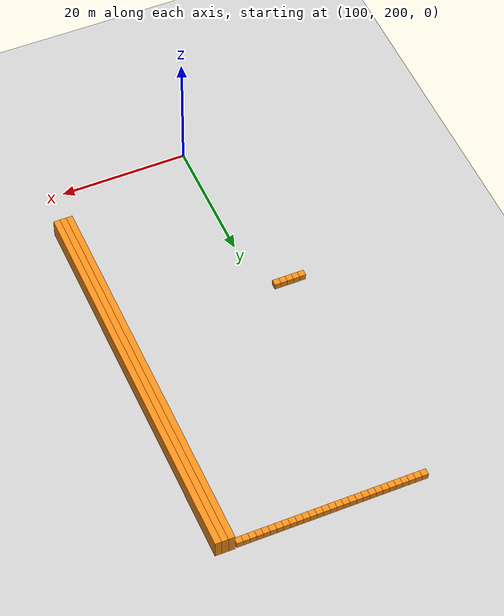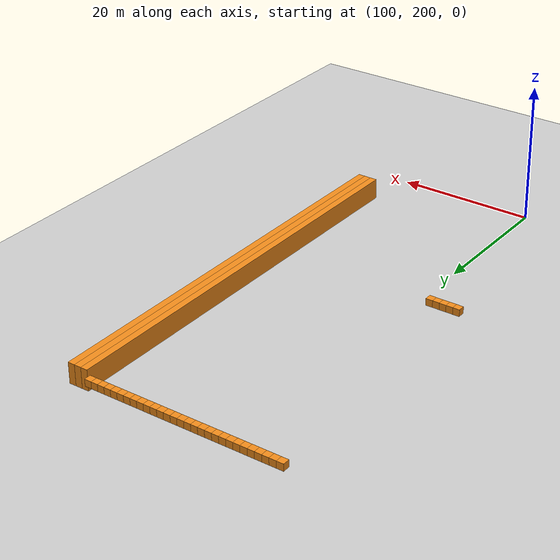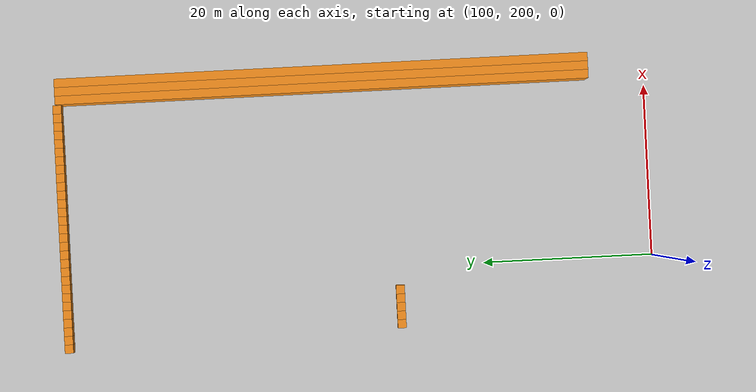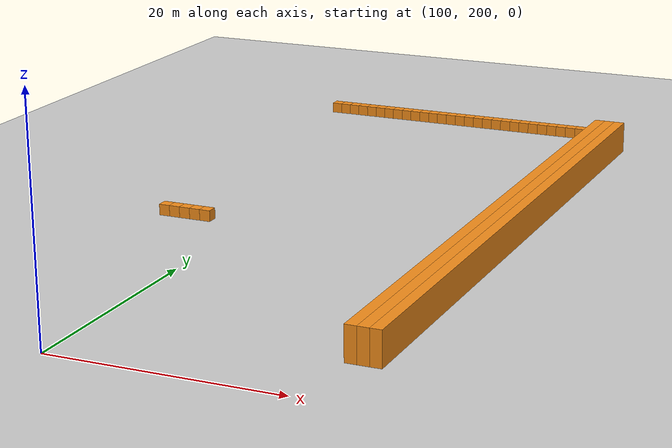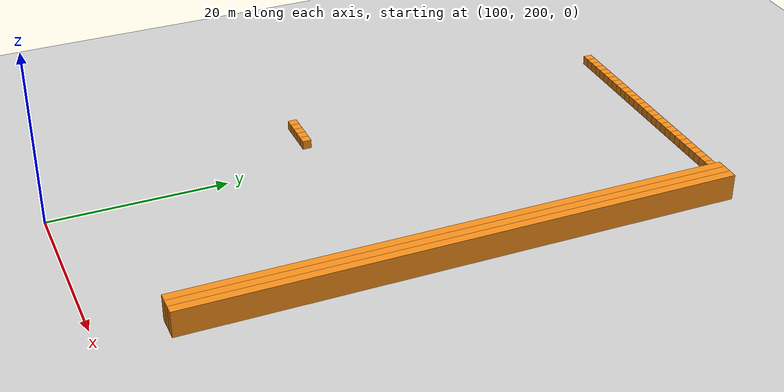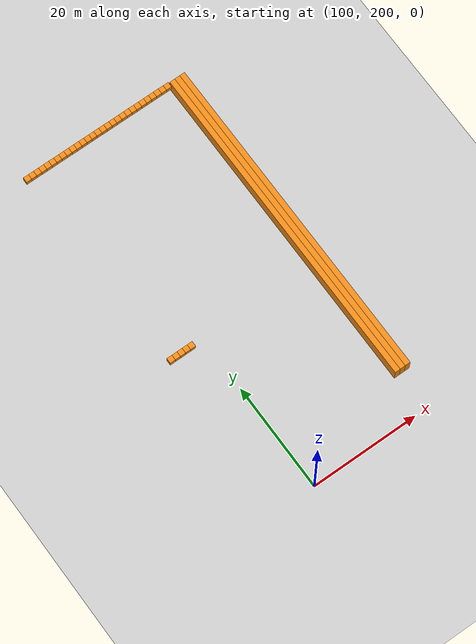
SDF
<sdf version="1.6">
 <world name="default">
  <include><uri>model://ground_plane</uri></include>
  <model name="unit_box_949">
   <pose>92.50   269.00     1.50 0 0 0</pose>
   <static>1</static>
   <link name="link">
    <inertial>
     <mass>5000</mass>
     <inertia><ixx>200</ixx><ixy>0</ixy><ixz>0</ixz><iyy>200</iyy><iyz>0</iyz><izz>200</izz></inertia>
    </inertial>
    <collision name="collision"><geometry><box><size>1 1 1</size></box></geometry></collision>
    <visual name="visual">
     <geometry><box><size>1 1 1</size></box></geometry>
     <material>
      <script><name>Gazebo/Orange</name><uri>file://media/materials/scripts/gazebo.material</uri></script>
     </material>
    </visual>
   </link>
  </model>
  <model name="unit_box_956">
   <pose>93.50   230.00     1.50 0 0 0</pose>
   <static>1</static>
   <link name="link">
    <inertial>
     <mass>5000</mass>
     <inertia><ixx>200</ixx><ixy>0</ixy><ixz>0</ixz><iyy>200</iyy><iyz>0</iyz><izz>200</izz></inertia>
    </inertial>
    <collision name="collision"><geometry><box><size>1 1 1</size></box></geometry></collision>
    <visual name="visual">
     <geometry><box><size>1 1 1</size></box></geometry>
     <material>
      <script><name>Gazebo/Orange</name><uri>file://media/materials/scripts/gazebo.material</uri></script>
     </material>
    </visual>
   </link>
  </model>
  <model name="unit_box_957">
   <pose>93.50   269.00     1.50 0 0 0</pose>
   <static>1</static>
   <link name="link">
    <inertial>
     <mass>5000</mass>
     <inertia><ixx>200</ixx><ixy>0</ixy><ixz>0</ixz><iyy>200</iyy><iyz>0</iyz><izz>200</izz></inertia>
    </inertial>
    <collision name="collision"><geometry><box><size>1 1 1</size></box></geometry></collision>
    <visual name="visual">
     <geometry><box><size>1 1 1</size></box></geometry>
     <material>
      <script><name>Gazebo/Orange</name><uri>file://media/materials/scripts/gazebo.material</uri></script>
     </material>
    </visual>
   </link>
  </model>
  <model name="unit_box_964">
   <pose>94.50   230.00     1.50 0 0 0</pose>
   <static>1</static>
   <link name="link">
    <inertial>
     <mass>5000</mass>
     <inertia><ixx>200</ixx><ixy>0</ixy><ixz>0</ixz><iyy>200</iyy><iyz>0</iyz><izz>200</izz></inertia>
    </inertial>
    <collision name="collision"><geometry><box><size>1 1 1</size></box></geometry></collision>
    <visual name="visual">
     <geometry><box><size>1 1 1</size></box></geometry>
     <material>
      <script><name>Gazebo/Orange</name><uri>file://media/materials/scripts/gazebo.material</uri></script>
     </material>
    </visual>
   </link>
  </model>
  <model name="unit_box_965">
   <pose>94.50   269.00     1.50 0 0 0</pose>
   <static>1</static>
   <link name="link">
    <inertial>
     <mass>5000</mass>
     <inertia><ixx>200</ixx><ixy>0</ixy><ixz>0</ixz><iyy>200</iyy><iyz>0</iyz><izz>200</izz></inertia>
    </inertial>
    <collision name="collision"><geometry><box><size>1 1 1</size></box></geometry></collision>
    <visual name="visual">
     <geometry><box><size>1 1 1</size></box></geometry>
     <material>
      <script><name>Gazebo/Orange</name><uri>file://media/materials/scripts/gazebo.material</uri></script>
     </material>
    </visual>
   </link>
  </model>
  <model name="unit_box_971">
   <pose>95.50   230.00     1.50 0 0 0</pose>
   <static>1</static>
   <link name="link">
    <inertial>
     <mass>5000</mass>
     <inertia><ixx>200</ixx><ixy>0</ixy><ixz>0</ixz><iyy>200</iyy><iyz>0</iyz><izz>200</izz></inertia>
    </inertial>
    <collision name="collision"><geometry><box><size>1 1 1</size></box></geometry></collision>
    <visual name="visual">
     <geometry><box><size>1 1 1</size></box></geometry>
     <material>
      <script><name>Gazebo/Orange</name><uri>file://media/materials/scripts/gazebo.material</uri></script>
     </material>
    </visual>
   </link>
  </model>
  <model name="unit_box_972">
   <pose>95.50   269.00     1.50 0 0 0</pose>
   <static>1</static>
   <link name="link">
    <inertial>
     <mass>5000</mass>
     <inertia><ixx>200</ixx><ixy>0</ixy><ixz>0</ixz><iyy>200</iyy><iyz>0</iyz><izz>200</izz></inertia>
    </inertial>
    <collision name="collision"><geometry><box><size>1 1 1</size></box></geometry></collision>
    <visual name="visual">
     <geometry><box><size>1 1 1</size></box></geometry>
     <material>
      <script><name>Gazebo/Orange</name><uri>file://media/materials/scripts/gazebo.material</uri></script>
     </material>
    </visual>
   </link>
  </model>
  <model name="unit_box_979">
   <pose>96.50   230.00     1.50 0 0 0</pose>
   <static>1</static>
   <link name="link">
    <inertial>
     <mass>5000</mass>
     <inertia><ixx>200</ixx><ixy>0</ixy><ixz>0</ixz><iyy>200</iyy><iyz>0</iyz><izz>200</izz></inertia>
    </inertial>
    <collision name="collision"><geometry><box><size>1 1 1</size></box></geometry></collision>
    <visual name="visual">
     <geometry><box><size>1 1 1</size></box></geometry>
     <material>
      <script><name>Gazebo/Orange</name><uri>file://media/materials/scripts/gazebo.material</uri></script>
     </material>
    </visual>
   </link>
  </model>
  <model name="unit_box_980">
   <pose>96.50   269.00     1.50 0 0 0</pose>
   <static>1</static>
   <link name="link">
    <inertial>
     <mass>5000</mass>
     <inertia><ixx>200</ixx><ixy>0</ixy><ixz>0</ixz><iyy>200</iyy><iyz>0</iyz><izz>200</izz></inertia>
    </inertial>
    <collision name="collision"><geometry><box><size>1 1 1</size></box></geometry></collision>
    <visual name="visual">
     <geometry><box><size>1 1 1</size></box></geometry>
     <material>
      <script><name>Gazebo/Orange</name><uri>file://media/materials/scripts/gazebo.material</uri></script>
     </material>
    </visual>
   </link>
  </model>
  <model name="unit_box_987">
   <pose>97.50   230.00     1.50 0 0 0</pose>
   <static>1</static>
   <link name="link">
    <inertial>
     <mass>5000</mass>
     <inertia><ixx>200</ixx><ixy>0</ixy><ixz>0</ixz><iyy>200</iyy><iyz>0</iyz><izz>200</izz></inertia>
    </inertial>
    <collision name="collision"><geometry><box><size>1 1 1</size></box></geometry></collision>
    <visual name="visual">
     <geometry><box><size>1 1 1</size></box></geometry>
     <material>
      <script><name>Gazebo/Orange</name><uri>file://media/materials/scripts/gazebo.material</uri></script>
     </material>
    </visual>
   </link>
  </model>
  <model name="unit_box_988">
   <pose>97.50   269.00     1.50 0 0 0</pose>
   <static>1</static>
   <link name="link">
    <inertial>
     <mass>5000</mass>
     <inertia><ixx>200</ixx><ixy>0</ixy><ixz>0</ixz><iyy>200</iyy><iyz>0</iyz><izz>200</izz></inertia>
    </inertial>
    <collision name="collision"><geometry><box><size>1 1 1</size></box></geometry></collision>
    <visual name="visual">
     <geometry><box><size>1 1 1</size></box></geometry>
     <material>
      <script><name>Gazebo/Orange</name><uri>file://media/materials/scripts/gazebo.material</uri></script>
     </material>
    </visual>
   </link>
  </model>
  <model name="unit_box_996">
   <pose>98.50   269.00     1.50 0 0 0</pose>
   <static>1</static>
   <link name="link">
    <inertial>
     <mass>5000</mass>
     <inertia><ixx>200</ixx><ixy>0</ixy><ixz>0</ixz><iyy>200</iyy><iyz>0</iyz><izz>200</izz></inertia>
    </inertial>
    <collision name="collision"><geometry><box><size>1 1 1</size></box></geometry></collision>
    <visual name="visual">
     <geometry><box><size>1 1 1</size></box></geometry>
     <material>
      <script><name>Gazebo/Orange</name><uri>file://media/materials/scripts/gazebo.material</uri></script>
     </material>
    </visual>
   </link>
  </model>
  <model name="unit_box_1003">
   <pose>99.50   269.00     1.50 0 0 0</pose>
   <static>1</static>
   <link name="link">
    <inertial>
     <mass>5000</mass>
     <inertia><ixx>200</ixx><ixy>0</ixy><ixz>0</ixz><iyy>200</iyy><iyz>0</iyz><izz>200</izz></inertia>
    </inertial>
    <collision name="collision"><geometry><box><size>1 1 1</size></box></geometry></collision>
    <visual name="visual">
     <geometry><box><size>1 1 1</size></box></geometry>
     <material>
      <script><name>Gazebo/Orange</name><uri>file://media/materials/scripts/gazebo.material</uri></script>
     </material>
    </visual>
   </link>
  </model>
  <model name="unit_box_1009">
   <pose>100.50   269.00     1.50 0 0 0</pose>
   <static>1</static>
   <link name="link">
    <inertial>
     <mass>5000</mass>
     <inertia><ixx>200</ixx><ixy>0</ixy><ixz>0</ixz><iyy>200</iyy><iyz>0</iyz><izz>200</izz></inertia>
    </inertial>
    <collision name="collision"><geometry><box><size>1 1 1</size></box></geometry></collision>
    <visual name="visual">
     <geometry><box><size>1 1 1</size></box></geometry>
     <material>
      <script><name>Gazebo/Orange</name><uri>file://media/materials/scripts/gazebo.material</uri></script>
     </material>
    </visual>
   </link>
  </model>
  <model name="unit_box_1015">
   <pose>101.50   269.00     1.50 0 0 0</pose>
   <static>1</static>
   <link name="link">
    <inertial>
     <mass>5000</mass>
     <inertia><ixx>200</ixx><ixy>0</ixy><ixz>0</ixz><iyy>200</iyy><iyz>0</iyz><izz>200</izz></inertia>
    </inertial>
    <collision name="collision"><geometry><box><size>1 1 1</size></box></geometry></collision>
    <visual name="visual">
     <geometry><box><size>1 1 1</size></box></geometry>
     <material>
      <script><name>Gazebo/Orange</name><uri>file://media/materials/scripts/gazebo.material</uri></script>
     </material>
    </visual>
   </link>
  </model>
  <model name="unit_box_1022">
   <pose>102.50   269.00     1.50 0 0 0</pose>
   <static>1</static>
   <link name="link">
    <inertial>
     <mass>5000</mass>
     <inertia><ixx>200</ixx><ixy>0</ixy><ixz>0</ixz><iyy>200</iyy><iyz>0</iyz><izz>200</izz></inertia>
    </inertial>
    <collision name="collision"><geometry><box><size>1 1 1</size></box></geometry></collision>
    <visual name="visual">
     <geometry><box><size>1 1 1</size></box></geometry>
     <material>
      <script><name>Gazebo/Orange</name><uri>file://media/materials/scripts/gazebo.material</uri></script>
     </material>
    </visual>
   </link>
  </model>
  <model name="unit_box_1029">
   <pose>103.50   269.00     1.50 0 0 0</pose>
   <static>1</static>
   <link name="link">
    <inertial>
     <mass>5000</mass>
     <inertia><ixx>200</ixx><ixy>0</ixy><ixz>0</ixz><iyy>200</iyy><iyz>0</iyz><izz>200</izz></inertia>
    </inertial>
    <collision name="collision"><geometry><box><size>1 1 1</size></box></geometry></collision>
    <visual name="visual">
     <geometry><box><size>1 1 1</size></box></geometry>
     <material>
      <script><name>Gazebo/Orange</name><uri>file://media/materials/scripts/gazebo.material</uri></script>
     </material>
    </visual>
   </link>
  </model>
  <model name="unit_box_1036">
   <pose>104.50   269.00     1.50 0 0 0</pose>
   <static>1</static>
   <link name="link">
    <inertial>
     <mass>5000</mass>
     <inertia><ixx>200</ixx><ixy>0</ixy><ixz>0</ixz><iyy>200</iyy><iyz>0</iyz><izz>200</izz></inertia>
    </inertial>
    <collision name="collision"><geometry><box><size>1 1 1</size></box></geometry></collision>
    <visual name="visual">
     <geometry><box><size>1 1 1</size></box></geometry>
     <material>
      <script><name>Gazebo/Orange</name><uri>file://media/materials/scripts/gazebo.material</uri></script>
     </material>
    </visual>
   </link>
  </model>
  <model name="unit_box_1043">
   <pose>105.50   269.00     1.50 0 0 0</pose>
   <static>1</static>
   <link name="link">
    <inertial>
     <mass>5000</mass>
     <inertia><ixx>200</ixx><ixy>0</ixy><ixz>0</ixz><iyy>200</iyy><iyz>0</iyz><izz>200</izz></inertia>
    </inertial>
    <collision name="collision"><geometry><box><size>1 1 1</size></box></geometry></collision>
    <visual name="visual">
     <geometry><box><size>1 1 1</size></box></geometry>
     <material>
      <script><name>Gazebo/Orange</name><uri>file://media/materials/scripts/gazebo.material</uri></script>
     </material>
    </visual>
   </link>
  </model>
  <model name="unit_box_1050">
   <pose>106.50   269.00     1.50 0 0 0</pose>
   <static>1</static>
   <link name="link">
    <inertial>
     <mass>5000</mass>
     <inertia><ixx>200</ixx><ixy>0</ixy><ixz>0</ixz><iyy>200</iyy><iyz>0</iyz><izz>200</izz></inertia>
    </inertial>
    <collision name="collision"><geometry><box><size>1 1 1</size></box></geometry></collision>
    <visual name="visual">
     <geometry><box><size>1 1 1</size></box></geometry>
     <material>
      <script><name>Gazebo/Orange</name><uri>file://media/materials/scripts/gazebo.material</uri></script>
     </material>
    </visual>
   </link>
  </model>
  <model name="unit_box_1058">
   <pose>107.50   269.00     1.50 0 0 0</pose>
   <static>1</static>
   <link name="link">
    <inertial>
     <mass>5000</mass>
     <inertia><ixx>200</ixx><ixy>0</ixy><ixz>0</ixz><iyy>200</iyy><iyz>0</iyz><izz>200</izz></inertia>
    </inertial>
    <collision name="collision"><geometry><box><size>1 1 1</size></box></geometry></collision>
    <visual name="visual">
     <geometry><box><size>1 1 1</size></box></geometry>
     <material>
      <script><name>Gazebo/Orange</name><uri>file://media/materials/scripts/gazebo.material</uri></script>
     </material>
    </visual>
   </link>
  </model>
  <model name="unit_box_1067">
   <pose>108.50   269.00     1.50 0 0 0</pose>
   <static>1</static>
   <link name="link">
    <inertial>
     <mass>5000</mass>
     <inertia><ixx>200</ixx><ixy>0</ixy><ixz>0</ixz><iyy>200</iyy><iyz>0</iyz><izz>200</izz></inertia>
    </inertial>
    <collision name="collision"><geometry><box><size>1 1 1</size></box></geometry></collision>
    <visual name="visual">
     <geometry><box><size>1 1 1</size></box></geometry>
     <material>
      <script><name>Gazebo/Orange</name><uri>file://media/materials/scripts/gazebo.material</uri></script>
     </material>
    </visual>
   </link>
  </model>
  <model name="unit_box_1076">
   <pose>109.50   269.00     1.50 0 0 0</pose>
   <static>1</static>
   <link name="link">
    <inertial>
     <mass>5000</mass>
     <inertia><ixx>200</ixx><ixy>0</ixy><ixz>0</ixz><iyy>200</iyy><iyz>0</iyz><izz>200</izz></inertia>
    </inertial>
    <collision name="collision"><geometry><box><size>1 1 1</size></box></geometry></collision>
    <visual name="visual">
     <geometry><box><size>1 1 1</size></box></geometry>
     <material>
      <script><name>Gazebo/Orange</name><uri>file://media/materials/scripts/gazebo.material</uri></script>
     </material>
    </visual>
   </link>
  </model>
  <model name="unit_box_1085">
   <pose>110.50   269.00     1.50 0 0 0</pose>
   <static>1</static>
   <link name="link">
    <inertial>
     <mass>5000</mass>
     <inertia><ixx>200</ixx><ixy>0</ixy><ixz>0</ixz><iyy>200</iyy><iyz>0</iyz><izz>200</izz></inertia>
    </inertial>
    <collision name="collision"><geometry><box><size>1 1 1</size></box></geometry></collision>
    <visual name="visual">
     <geometry><box><size>1 1 1</size></box></geometry>
     <material>
      <script><name>Gazebo/Orange</name><uri>file://media/materials/scripts/gazebo.material</uri></script>
     </material>
    </visual>
   </link>
  </model>
  <model name="unit_box_1093">
   <pose>111.50   269.00     1.50 0 0 0</pose>
   <static>1</static>
   <link name="link">
    <inertial>
     <mass>5000</mass>
     <inertia><ixx>200</ixx><ixy>0</ixy><ixz>0</ixz><iyy>200</iyy><iyz>0</iyz><izz>200</izz></inertia>
    </inertial>
    <collision name="collision"><geometry><box><size>1 1 1</size></box></geometry></collision>
    <visual name="visual">
     <geometry><box><size>1 1 1</size></box></geometry>
     <material>
      <script><name>Gazebo/Orange</name><uri>file://media/materials/scripts/gazebo.material</uri></script>
     </material>
    </visual>
   </link>
  </model>
  <model name="unit_box_1101">
   <pose>112.50   269.00     1.50 0 0 0</pose>
   <static>1</static>
   <link name="link">
    <inertial>
     <mass>5000</mass>
     <inertia><ixx>200</ixx><ixy>0</ixy><ixz>0</ixz><iyy>200</iyy><iyz>0</iyz><izz>200</izz></inertia>
    </inertial>
    <collision name="collision"><geometry><box><size>1 1 1</size></box></geometry></collision>
    <visual name="visual">
     <geometry><box><size>1 1 1</size></box></geometry>
     <material>
      <script><name>Gazebo/Orange</name><uri>file://media/materials/scripts/gazebo.material</uri></script>
     </material>
    </visual>
   </link>
  </model>
  <model name="unit_box_1109">
   <pose>113.50   269.00     1.50 0 0 0</pose>
   <static>1</static>
   <link name="link">
    <inertial>
     <mass>5000</mass>
     <inertia><ixx>200</ixx><ixy>0</ixy><ixz>0</ixz><iyy>200</iyy><iyz>0</iyz><izz>200</izz></inertia>
    </inertial>
    <collision name="collision"><geometry><box><size>1 1 1</size></box></geometry></collision>
    <visual name="visual">
     <geometry><box><size>1 1 1</size></box></geometry>
     <material>
      <script><name>Gazebo/Orange</name><uri>file://media/materials/scripts/gazebo.material</uri></script>
     </material>
    </visual>
   </link>
  </model>
  <model name="unit_box_1117">
   <pose>114.50   269.00     1.50 0 0 0</pose>
   <static>1</static>
   <link name="link">
    <inertial>
     <mass>5000</mass>
     <inertia><ixx>200</ixx><ixy>0</ixy><ixz>0</ixz><iyy>200</iyy><iyz>0</iyz><izz>200</izz></inertia>
    </inertial>
    <collision name="collision"><geometry><box><size>1 1 1</size></box></geometry></collision>
    <visual name="visual">
     <geometry><box><size>1 1 1</size></box></geometry>
     <material>
      <script><name>Gazebo/Orange</name><uri>file://media/materials/scripts/gazebo.material</uri></script>
     </material>
    </visual>
   </link>
  </model>
  <model name="unit_box_1126">
   <pose>115.50   269.00     1.50 0 0 0</pose>
   <static>1</static>
   <link name="link">
    <inertial>
     <mass>5000</mass>
     <inertia><ixx>200</ixx><ixy>0</ixy><ixz>0</ixz><iyy>200</iyy><iyz>0</iyz><izz>200</izz></inertia>
    </inertial>
    <collision name="collision"><geometry><box><size>1 1 1</size></box></geometry></collision>
    <visual name="visual">
     <geometry><box><size>1 1 1</size></box></geometry>
     <material>
      <script><name>Gazebo/Orange</name><uri>file://media/materials/scripts/gazebo.material</uri></script>
     </material>
    </visual>
   </link>
  </model>
  <model name="unit_box_1135">
   <pose>116.50   269.00     1.50 0 0 0</pose>
   <static>1</static>
   <link name="link">
    <inertial>
     <mass>5000</mass>
     <inertia><ixx>200</ixx><ixy>0</ixy><ixz>0</ixz><iyy>200</iyy><iyz>0</iyz><izz>200</izz></inertia>
    </inertial>
    <collision name="collision"><geometry><box><size>1 1 1</size></box></geometry></collision>
    <visual name="visual">
     <geometry><box><size>1 1 1</size></box></geometry>
     <material>
      <script><name>Gazebo/Orange</name><uri>file://media/materials/scripts/gazebo.material</uri></script>
     </material>
    </visual>
   </link>
  </model>
  <model name="unit_box_1144">
   <pose>117.50   269.00     1.50 0 0 0</pose>
   <static>1</static>
   <link name="link">
    <inertial>
     <mass>5000</mass>
     <inertia><ixx>200</ixx><ixy>0</ixy><ixz>0</ixz><iyy>200</iyy><iyz>0</iyz><izz>200</izz></inertia>
    </inertial>
    <collision name="collision"><geometry><box><size>1 1 1</size></box></geometry></collision>
    <visual name="visual">
     <geometry><box><size>1 1 1</size></box></geometry>
     <material>
      <script><name>Gazebo/Orange</name><uri>file://media/materials/scripts/gazebo.material</uri></script>
     </material>
    </visual>
   </link>
  </model>
  <model name="unit_box_1153">
   <pose>118.50   269.00     1.50 0 0 0</pose>
   <static>1</static>
   <link name="link">
    <inertial>
     <mass>5000</mass>
     <inertia><ixx>200</ixx><ixy>0</ixy><ixz>0</ixz><iyy>200</iyy><iyz>0</iyz><izz>200</izz></inertia>
    </inertial>
    <collision name="collision"><geometry><box><size>1 1 1</size></box></geometry></collision>
    <visual name="visual">
     <geometry><box><size>1 1 1</size></box></geometry>
     <material>
      <script><name>Gazebo/Orange</name><uri>file://media/materials/scripts/gazebo.material</uri></script>
     </material>
    </visual>
   </link>
  </model>
  <model name="unit_box_1162">
   <pose>119.50   269.00     1.50 0 0 0</pose>
   <static>1</static>
   <link name="link">
    <inertial>
     <mass>5000</mass>
     <inertia><ixx>200</ixx><ixy>0</ixy><ixz>0</ixz><iyy>200</iyy><iyz>0</iyz><izz>200</izz></inertia>
    </inertial>
    <collision name="collision"><geometry><box><size>1 1 1</size></box></geometry></collision>
    <visual name="visual">
     <geometry><box><size>1 1 1</size></box></geometry>
     <material>
      <script><name>Gazebo/Orange</name><uri>file://media/materials/scripts/gazebo.material</uri></script>
     </material>
    </visual>
   </link>
  </model>
  <model name="unit_box_1171">
   <pose>120.50   269.00     1.50 0 0 0</pose>
   <static>1</static>
   <link name="link">
    <inertial>
     <mass>5000</mass>
     <inertia><ixx>200</ixx><ixy>0</ixy><ixz>0</ixz><iyy>200</iyy><iyz>0</iyz><izz>200</izz></inertia>
    </inertial>
    <collision name="collision"><geometry><box><size>1 1 1</size></box></geometry></collision>
    <visual name="visual">
     <geometry><box><size>1 1 1</size></box></geometry>
     <material>
      <script><name>Gazebo/Orange</name><uri>file://media/materials/scripts/gazebo.material</uri></script>
     </material>
    </visual>
   </link>
  </model>
  <model name="unit_box_1173">
   <pose>121.50   238.00     1.50 0 0 0</pose>
   <static>1</static>
   <link name="link">
    <inertial>
     <mass>5000</mass>
     <inertia><ixx>200</ixx><ixy>0</ixy><ixz>0</ixz><iyy>200</iyy><iyz>0</iyz><izz>200</izz></inertia>
    </inertial>
    <collision name="collision"><geometry><box><size>1 62 3</size></box></geometry></collision>
    <visual name="visual">
     <geometry><box><size>1 62 3</size></box></geometry>
     <material>
      <script><name>Gazebo/Orange</name><uri>file://media/materials/scripts/gazebo.material</uri></script>
     </material>
    </visual>
   </link>
  </model>
  <model name="unit_box_1175">
   <pose>122.50   238.00     1.50 0 0 0</pose>
   <static>1</static>
   <link name="link">
    <inertial>
     <mass>5000</mass>
     <inertia><ixx>200</ixx><ixy>0</ixy><ixz>0</ixz><iyy>200</iyy><iyz>0</iyz><izz>200</izz></inertia>
    </inertial>
    <collision name="collision"><geometry><box><size>1 62 3</size></box></geometry></collision>
    <visual name="visual">
     <geometry><box><size>1 62 3</size></box></geometry>
     <material>
      <script><name>Gazebo/Orange</name><uri>file://media/materials/scripts/gazebo.material</uri></script>
     </material>
    </visual>
   </link>
  </model>
  <model name="unit_box_1177">
   <pose>123.50   238.00     1.50 0 0 0</pose>
   <static>1</static>
   <link name="link">
    <inertial>
     <mass>5000</mass>
     <inertia><ixx>200</ixx><ixy>0</ixy><ixz>0</ixz><iyy>200</iyy><iyz>0</iyz><izz>200</izz></inertia>
    </inertial>
    <collision name="collision"><geometry><box><size>1 62 3</size></box></geometry></collision>
    <visual name="visual">
     <geometry><box><size>1 62 3</size></box></geometry>
     <material>
      <script><name>Gazebo/Orange</name><uri>file://media/materials/scripts/gazebo.material</uri></script>
     </material>
    </visual>
   </link>
  </model>
 </world>
</sdf>
